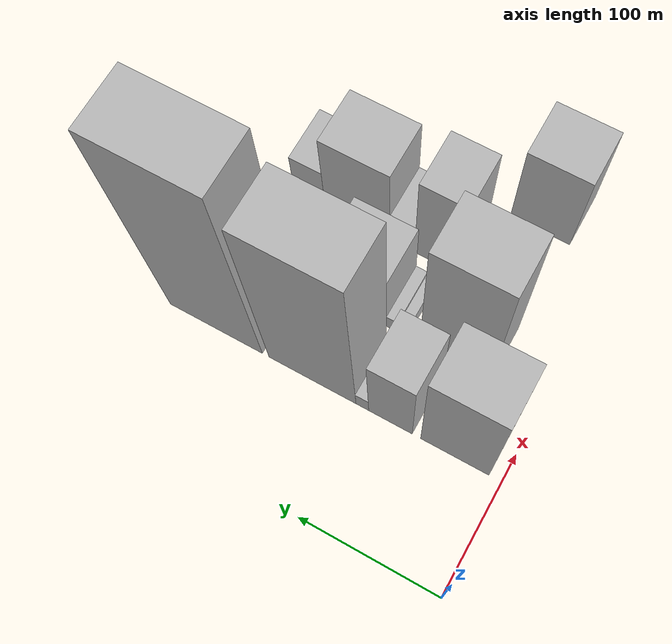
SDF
<sdf version="1.6">
 <world name="default">
  <model name="building_27">
   <static>1</static>
   <pose>100.0000 33.1813 0 0.000000 0.000000 0.000000</pose>
   <link name="link">
    <pose>0 0 61.50 0 0 0</pose>
    <collision name="collision"><geometry><box><size>40.0000 48.4115 123.0000</size></box></geometry></collision>
    <visual name="visual">
     <cast_shadows>0</cast_shadows>
     <geometry><box><size>40.0000 48.4115 123.0000</size></box></geometry>
     <material>
      <script>
       <uri>model://HANNAS_wall/materials/scripts</uri>
       <uri>model://HANNAS_wall/materials/textures</uri>
       <name>vrc/HANNAS_wall</name>
      </script>
     </material>
    </visual>
   </link>
  </model>
  <model name="building_28">
   <static>1</static>
   <pose>100.0000 79.0986 0 0.000000 0.000000 0.000000</pose>
   <link name="link">
    <pose>0 0 46.50 0 0 0</pose>
    <collision name="collision"><geometry><box><size>40.0000 31.4229 93.0000</size></box></geometry></collision>
    <visual name="visual">
     <cast_shadows>0</cast_shadows>
     <geometry><box><size>40.0000 31.4229 93.0000</size></box></geometry>
     <material>
      <script>
       <uri>model://HANNAS_wall/materials/scripts</uri>
       <uri>model://HANNAS_wall/materials/textures</uri>
       <name>vrc/HANNAS_wall</name>
      </script>
     </material>
    </visual>
   </link>
  </model>
  <model name="building_29">
   <static>1</static>
   <pose>100.0000 99.4468 0 0.000000 0.000000 0.000000</pose>
   <link name="link">
    <pose>0 0 10.50 0 0 0</pose>
    <collision name="collision"><geometry><box><size>40.0000 9.2736 21.0000</size></box></geometry></collision>
    <visual name="visual">
     <cast_shadows>0</cast_shadows>
     <geometry><box><size>40.0000 9.2736 21.0000</size></box></geometry>
     <material>
      <script>
       <uri>model://HANNAS_wall/materials/scripts</uri>
       <uri>model://HANNAS_wall/materials/textures</uri>
       <name>vrc/HANNAS_wall</name>
      </script>
     </material>
    </visual>
   </link>
  </model>
  <model name="building_30">
   <static>1</static>
   <pose>100.0000 136.3446 0 0.000000 0.000000 0.000000</pose>
   <link name="link">
    <pose>0 0 99.00 0 0 0</pose>
    <collision name="collision"><geometry><box><size>40.0000 64.5218 198.0000</size></box></geometry></collision>
    <visual name="visual">
     <cast_shadows>0</cast_shadows>
     <geometry><box><size>40.0000 64.5218 198.0000</size></box></geometry>
     <material>
      <script>
       <uri>model://HANNAS_wall/materials/scripts</uri>
       <uri>model://HANNAS_wall/materials/textures</uri>
       <name>vrc/HANNAS_wall</name>
      </script>
     </material>
    </visual>
   </link>
  </model>
  <model name="building_31">
   <static>1</static>
   <pose>100.0000 208.8867 0 0.000000 0.000000 0.000000</pose>
   <link name="link">
    <pose>0 0 112.50 0 0 0</pose>
    <collision name="collision"><geometry><box><size>40.0000 70.5624 225.0000</size></box></geometry></collision>
    <visual name="visual">
     <cast_shadows>0</cast_shadows>
     <geometry><box><size>40.0000 70.5624 225.0000</size></box></geometry>
     <material>
      <script>
       <uri>model://HANNAS_wall/materials/scripts</uri>
       <uri>model://HANNAS_wall/materials/textures</uri>
       <name>vrc/HANNAS_wall</name>
      </script>
     </material>
    </visual>
   </link>
  </model>
  <model name="building_82">
   <static>1</static>
   <pose>155.0000 61.9907 0 0.000000 0.000000 0.000000</pose>
   <link name="link">
    <pose>0 0 75.00 0 0 0</pose>
    <collision name="collision"><geometry><box><size>40.0000 51.5555 150.0000</size></box></geometry></collision>
    <visual name="visual">
     <cast_shadows>0</cast_shadows>
     <geometry><box><size>40.0000 51.5555 150.0000</size></box></geometry>
     <material>
      <script>
       <uri>model://HANNAS_wall/materials/scripts</uri>
       <uri>model://HANNAS_wall/materials/textures</uri>
       <name>vrc/HANNAS_wall</name>
      </script>
     </material>
    </visual>
   </link>
  </model>
  <model name="building_83">
   <static>1</static>
   <pose>155.0000 100.3819 0 0.000000 0.000000 0.000000</pose>
   <link name="link">
    <pose>0 0 7.50 0 0 0</pose>
    <collision name="collision"><geometry><box><size>40.0000 7.2269 15.0000</size></box></geometry></collision>
    <visual name="visual">
     <cast_shadows>0</cast_shadows>
     <geometry><box><size>40.0000 7.2269 15.0000</size></box></geometry>
     <material>
      <script>
       <uri>model://HANNAS_wall/materials/scripts</uri>
       <uri>model://HANNAS_wall/materials/textures</uri>
       <name>vrc/HANNAS_wall</name>
      </script>
     </material>
    </visual>
   </link>
  </model>
  <model name="building_84">
   <static>1</static>
   <pose>155.0000 108.1737 0 0.000000 0.000000 0.000000</pose>
   <link name="link">
    <pose>0 0 9.00 0 0 0</pose>
    <collision name="collision"><geometry><box><size>40.0000 8.3567 18.0000</size></box></geometry></collision>
    <visual name="visual">
     <cast_shadows>0</cast_shadows>
     <geometry><box><size>40.0000 8.3567 18.0000</size></box></geometry>
     <material>
      <script>
       <uri>model://HANNAS_wall/materials/scripts</uri>
       <uri>model://HANNAS_wall/materials/textures</uri>
       <name>vrc/HANNAS_wall</name>
      </script>
     </material>
    </visual>
   </link>
  </model>
  <model name="building_85">
   <static>1</static>
   <pose>155.0000 134.4168 0 0.000000 0.000000 0.000000</pose>
   <link name="link">
    <pose>0 0 37.50 0 0 0</pose>
    <collision name="collision"><geometry><box><size>40.0000 44.1296 75.0000</size></box></geometry></collision>
    <visual name="visual">
     <cast_shadows>0</cast_shadows>
     <geometry><box><size>40.0000 44.1296 75.0000</size></box></geometry>
     <material>
      <script>
       <uri>model://HANNAS_wall/materials/scripts</uri>
       <uri>model://HANNAS_wall/materials/textures</uri>
       <name>vrc/HANNAS_wall</name>
      </script>
     </material>
    </visual>
   </link>
  </model>
  <model name="building_86">
   <static>1</static>
   <pose>155.0000 161.0077 0 0.000000 0.000000 0.000000</pose>
   <link name="link">
    <pose>0 0 10.50 0 0 0</pose>
    <collision name="collision"><geometry><box><size>40.0000 9.0522 21.0000</size></box></geometry></collision>
    <visual name="visual">
     <cast_shadows>0</cast_shadows>
     <geometry><box><size>40.0000 9.0522 21.0000</size></box></geometry>
     <material>
      <script>
       <uri>model://HANNAS_wall/materials/scripts</uri>
       <uri>model://HANNAS_wall/materials/textures</uri>
       <name>vrc/HANNAS_wall</name>
      </script>
     </material>
    </visual>
   </link>
  </model>
  <model name="building_87">
   <static>1</static>
   <pose>155.0000 177.5610 0 0.000000 0.000000 0.000000</pose>
   <link name="link">
    <pose>0 0 21.00 0 0 0</pose>
    <collision name="collision"><geometry><box><size>40.0000 24.0544 42.0000</size></box></geometry></collision>
    <visual name="visual">
     <cast_shadows>0</cast_shadows>
     <geometry><box><size>40.0000 24.0544 42.0000</size></box></geometry>
     <material>
      <script>
       <uri>model://HANNAS_wall/materials/scripts</uri>
       <uri>model://HANNAS_wall/materials/textures</uri>
       <name>vrc/HANNAS_wall</name>
      </script>
     </material>
    </visual>
   </link>
  </model>
  <model name="building_88">
   <static>1</static>
   <pose>155.0000 204.9838 0 0.000000 0.000000 0.000000</pose>
   <link name="link">
    <pose>0 0 28.50 0 0 0</pose>
    <collision name="collision"><geometry><box><size>40.0000 30.7913 57.0000</size></box></geometry></collision>
    <visual name="visual">
     <cast_shadows>0</cast_shadows>
     <geometry><box><size>40.0000 30.7913 57.0000</size></box></geometry>
     <material>
      <script>
       <uri>model://HANNAS_wall/materials/scripts</uri>
       <uri>model://HANNAS_wall/materials/textures</uri>
       <name>vrc/HANNAS_wall</name>
      </script>
     </material>
    </visual>
   </link>
  </model>
  <model name="building_138">
   <static>1</static>
   <pose>210.0000 64.1572 0 0.000000 0.000000 0.000000</pose>
   <link name="link">
    <pose>0 0 10.50 0 0 0</pose>
    <collision name="collision"><geometry><box><size>40.0000 8.8937 21.0000</size></box></geometry></collision>
    <visual name="visual">
     <cast_shadows>0</cast_shadows>
     <geometry><box><size>40.0000 8.8937 21.0000</size></box></geometry>
     <material>
      <script>
       <uri>model://HANNAS_wall/materials/scripts</uri>
       <uri>model://HANNAS_wall/materials/textures</uri>
       <name>vrc/HANNAS_wall</name>
      </script>
     </material>
    </visual>
   </link>
  </model>
  <model name="building_139">
   <static>1</static>
   <pose>210.0000 78.2264 0 0.000000 0.000000 0.000000</pose>
   <link name="link">
    <pose>0 0 16.50 0 0 0</pose>
    <collision name="collision"><geometry><box><size>40.0000 19.2447 33.0000</size></box></geometry></collision>
    <visual name="visual">
     <cast_shadows>0</cast_shadows>
     <geometry><box><size>40.0000 19.2447 33.0000</size></box></geometry>
     <material>
      <script>
       <uri>model://HANNAS_wall/materials/scripts</uri>
       <uri>model://HANNAS_wall/materials/textures</uri>
       <name>vrc/HANNAS_wall</name>
      </script>
     </material>
    </visual>
   </link>
  </model>
  <model name="building_140">
   <static>1</static>
   <pose>210.0000 104.5508 0 0.000000 0.000000 0.000000</pose>
   <link name="link">
    <pose>0 0 49.50 0 0 0</pose>
    <collision name="collision"><geometry><box><size>40.0000 33.4042 99.0000</size></box></geometry></collision>
    <visual name="visual">
     <cast_shadows>0</cast_shadows>
     <geometry><box><size>40.0000 33.4042 99.0000</size></box></geometry>
     <material>
      <script>
       <uri>model://HANNAS_wall/materials/scripts</uri>
       <uri>model://HANNAS_wall/materials/textures</uri>
       <name>vrc/HANNAS_wall</name>
      </script>
     </material>
    </visual>
   </link>
  </model>
  <model name="building_141">
   <static>1</static>
   <pose>210.0000 130.7747 0 0.000000 0.000000 0.000000</pose>
   <link name="link">
    <pose>0 0 18.00 0 0 0</pose>
    <collision name="collision"><geometry><box><size>40.0000 19.0436 36.0000</size></box></geometry></collision>
    <visual name="visual">
     <cast_shadows>0</cast_shadows>
     <geometry><box><size>40.0000 19.0436 36.0000</size></box></geometry>
     <material>
      <script>
       <uri>model://HANNAS_wall/materials/scripts</uri>
       <uri>model://HANNAS_wall/materials/textures</uri>
       <name>vrc/HANNAS_wall</name>
      </script>
     </material>
    </visual>
   </link>
  </model>
  <model name="building_142">
   <static>1</static>
   <pose>210.0000 165.1754 0 0.000000 0.000000 0.000000</pose>
   <link name="link">
    <pose>0 0 45.00 0 0 0</pose>
    <collision name="collision"><geometry><box><size>40.0000 49.7576 90.0000</size></box></geometry></collision>
    <visual name="visual">
     <cast_shadows>0</cast_shadows>
     <geometry><box><size>40.0000 49.7576 90.0000</size></box></geometry>
     <material>
      <script>
       <uri>model://HANNAS_wall/materials/scripts</uri>
       <uri>model://HANNAS_wall/materials/textures</uri>
       <name>vrc/HANNAS_wall</name>
      </script>
     </material>
    </visual>
   </link>
  </model>
  <model name="building_143">
   <static>1</static>
   <pose>210.0000 202.1014 0 0.000000 0.000000 0.000000</pose>
   <link name="link">
    <pose>0 0 24.00 0 0 0</pose>
    <collision name="collision"><geometry><box><size>40.0000 24.0944 48.0000</size></box></geometry></collision>
    <visual name="visual">
     <cast_shadows>0</cast_shadows>
     <geometry><box><size>40.0000 24.0944 48.0000</size></box></geometry>
     <material>
      <script>
       <uri>model://HANNAS_wall/materials/scripts</uri>
       <uri>model://HANNAS_wall/materials/textures</uri>
       <name>vrc/HANNAS_wall</name>
      </script>
     </material>
    </visual>
   </link>
  </model>
  <model name="building_187">
   <static>1</static>
   <pose>265.0000 54.8829 0 0.000000 0.000000 0.000000</pose>
   <link name="link">
    <pose>0 0 43.50 0 0 0</pose>
    <collision name="collision"><geometry><box><size>40.0000 44.4151 87.0000</size></box></geometry></collision>
    <visual name="visual">
     <cast_shadows>0</cast_shadows>
     <geometry><box><size>40.0000 44.4151 87.0000</size></box></geometry>
     <material>
      <script>
       <uri>model://HANNAS_wall/materials/scripts</uri>
       <uri>model://HANNAS_wall/materials/textures</uri>
       <name>vrc/HANNAS_wall</name>
      </script>
     </material>
    </visual>
   </link>
  </model>
 </world>
</sdf>
